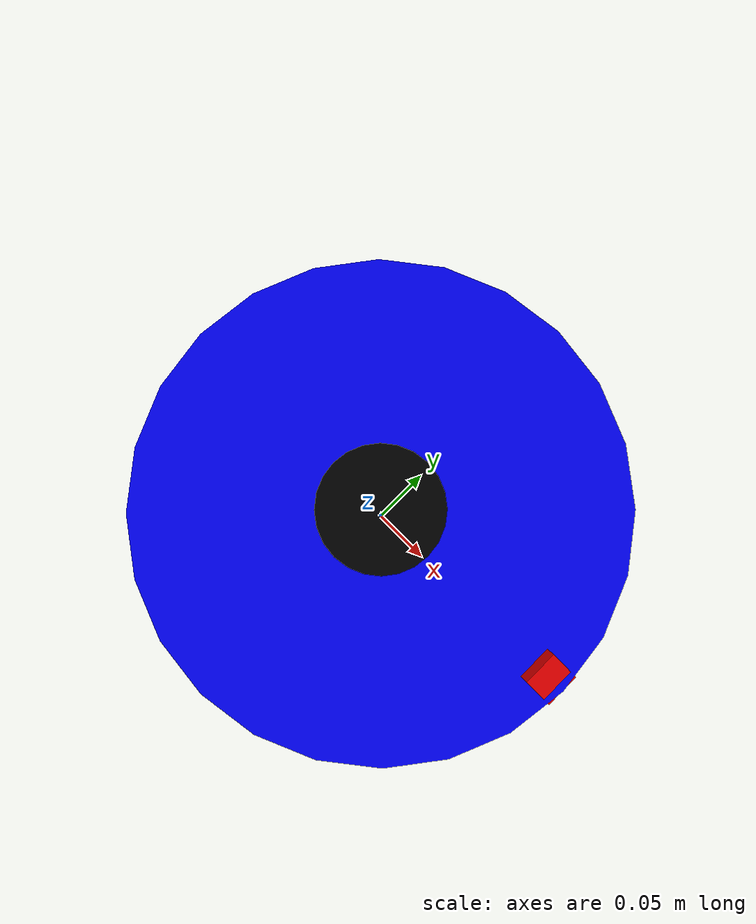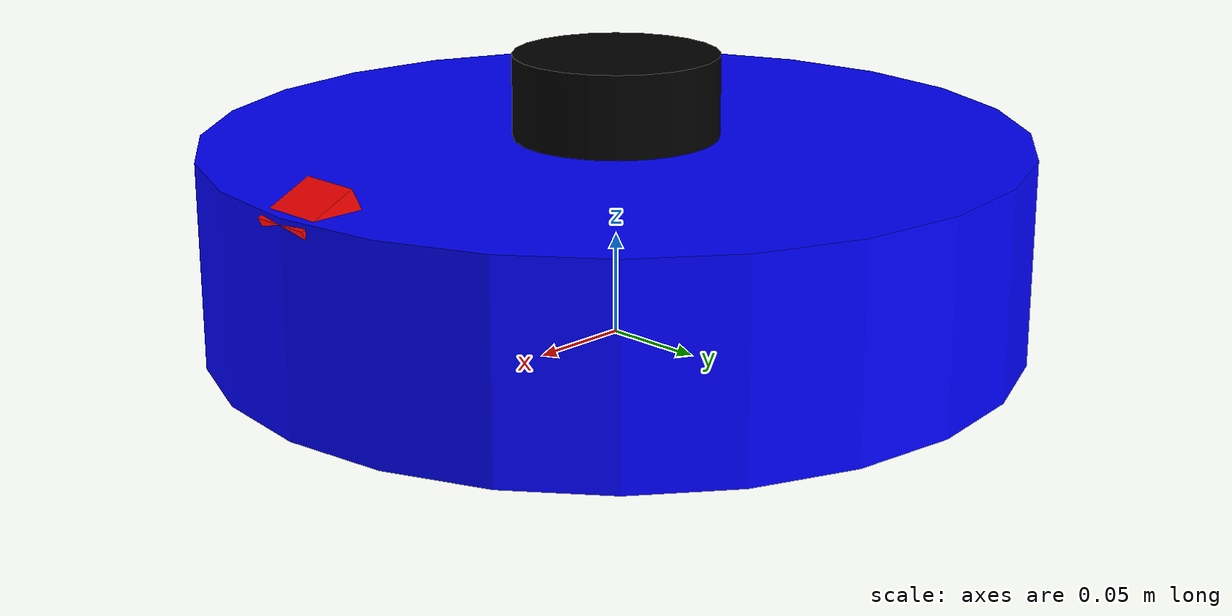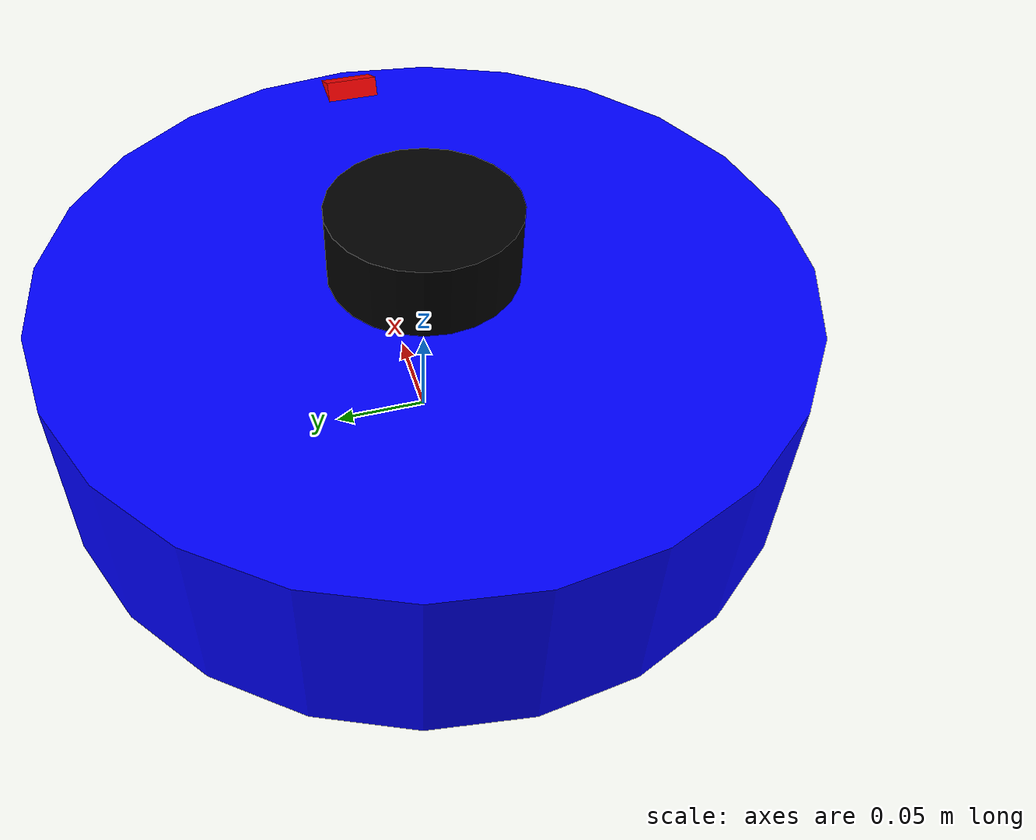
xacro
<?xml version="1.0"?>
<robot xmlns:xacro="http://www.ros.org/wiki/xacro" name="vacuum_bot">

  <!-- BASE FOOTPRINT & BASE LINK -->
  <link name="base_footprint"/>

  <joint name="base_joint" type="fixed">
    <parent link="base_footprint"/>
    <child link="base_link"/>
    <origin xyz="0 0 0.05" rpy="0 0 0"/>
  </joint>

  <link name="base_link">
    <visual>
      <geometry>
        <cylinder radius="0.2" length="0.1"/>
      </geometry>
      <material name="blue">
        <color rgba="0 0 1 1"/>
      </material>
    </visual>
    <collision>
      <geometry>
        <cylinder radius="0.2" length="0.1"/>
      </geometry>
    </collision>
    <inertial>
      <mass value="2.0"/>
      <origin xyz="0 0 0" rpy="0 0 0"/>
      <inertia ixx="0.02" ixy="0" ixz="0" iyy="0.02" iyz="0" izz="0.04"/>
    </inertial>
  </link>

  <!-- LEFT WHEEL -->
  <link name="left_wheel_link">
    <visual>
      <geometry>
        <cylinder radius="0.05" length="0.02"/>
      </geometry>
      <material name="black">
        <color rgba="0 0 0 1"/>
      </material>
    </visual>
    <collision>
      <geometry>
        <cylinder radius="0.05" length="0.02"/>
      </geometry>
    </collision>
    <inertial>
      <mass value="0.2"/>
      <origin xyz="0 0 0" rpy="0 0 0"/>
      <inertia ixx="0.0001" ixy="0" ixz="0" iyy="0.0001" iyz="0" izz="0.0002"/>
    </inertial>
  </link>

  <joint name="left_wheel_joint" type="continuous">
    <parent link="base_link"/>
    <child link="left_wheel_link"/>
    <origin xyz="0 0.15 0" rpy="-1.5708 0 0"/>
    <axis xyz="0 0 1"/>
  </joint>

  <!-- RIGHT WHEEL -->
  <link name="right_wheel_link">
    <visual>
      <geometry>
        <cylinder radius="0.05" length="0.02"/>
      </geometry>
      <material name="black">
        <color rgba="0 0 0 1"/>
      </material>
    </visual>
    <collision>
      <geometry>
        <cylinder radius="0.05" length="0.02"/>
      </geometry>
    </collision>
    <inertial>
      <mass value="0.2"/>
      <origin xyz="0 0 0" rpy="0 0 0"/>
      <inertia ixx="0.0001" ixy="0" ixz="0" iyy="0.0001" iyz="0" izz="0.0002"/>
    </inertial>
  </link>

  <joint name="right_wheel_joint" type="continuous">
    <parent link="base_link"/>
    <child link="right_wheel_link"/>
    <origin xyz="0 -0.15 0" rpy="-1.5708 0 0"/>
    <axis xyz="0 0 1"/>
  </joint>

  <!-- CASTER WHEEL -->
  <link name="caster_wheel_link">
    <visual>
      <geometry>
        <sphere radius="0.025"/>
      </geometry>
      <material name="black">
        <color rgba="0 0 0 1"/>
      </material>
    </visual>
    <collision>
      <geometry>
        <sphere radius="0.025"/>
      </geometry>
    </collision>
    <inertial>
      <mass value="0.1"/>
      <origin xyz="0 0 0" rpy="0 0 0"/>
      <inertia ixx="0.00001" ixy="0" ixz="0" iyy="0.00001" iyz="0" izz="0.00001"/>
    </inertial>
  </link>

  <joint name="caster_wheel_joint" type="fixed">
    <parent link="base_link"/>
    <child link="caster_wheel_link"/>
    <origin xyz="0.15 0 -0.025" rpy="0 0 0"/>
  </joint>

  <!-- LIDAR SENSOR WITH VISUAL RAYS -->
  <link name="lidar_link">
    <visual>
      <geometry>
        <cylinder radius="0.05" length="0.04"/>
      </geometry>
      <material name="black">
        <color rgba="0 0 0 1"/>
      </material>
    </visual>
    <collision>
      <geometry>
        <cylinder radius="0.05" length="0.04"/>
      </geometry>
    </collision>
  </link>

  <joint name="lidar_joint" type="fixed">
    <parent link="base_link"/>
    <child link="lidar_link"/>
    <origin xyz="0 0 0.07" rpy="0 0 0"/>
  </joint>

  <gazebo reference="lidar_link">
    <sensor name="gpu_lidar" type="gpu_lidar">
      <update_rate>10</update_rate>
      <topic>/scan</topic>
      <gz_frame_id>lidar_link</gz_frame_id>
      <always_on>true</always_on>
      <visualize>true</visualize>
      <lidar>
        <scan>
          <horizontal>
            <samples>360</samples>
            <resolution>1</resolution>
            <min_angle>-3.14159</min_angle>
            <max_angle>3.14159</max_angle>
          </horizontal>
        </scan>
        <range>
          <min>0.15</min>
          <max>10.0</max>
        </range>
      </lidar>
    </sensor>
  </gazebo>

  <!-- CAMERA SENSOR -->
  <link name="camera_link">
    <visual>
      <geometry>
        <box size="0.03 0.03 0.03"/>
      </geometry>
      <material name="red">
        <color rgba="1 0 0 1"/>
      </material>
    </visual>
    <collision>
      <geometry>
        <box size="0.03 0.03 0.03"/>
      </geometry>
    </collision>
  </link>

  <joint name="camera_joint" type="fixed">
    <parent link="base_link"/>
    <child link="camera_link"/>
    <origin xyz="0.18 0 0.04" rpy="0 0.45 0"/>
  </joint>

  <gazebo reference="camera_link">
    <sensor name="camera" type="camera">
      <always_on>true</always_on>
      <update_rate>30</update_rate>
      <visualize>true</visualize>
      <topic>/camera/image_raw</topic>
      <gz_frame_id>camera_link</gz_frame_id>
      <camera>
        <horizontal_fov>1.089</horizontal_fov>
        <image>
          <width>640</width>
          <height>480</height>
          <format>R8G8B8</format>
        </image>
        <clip>
          <near>0.05</near>
          <far>8.0</far>
        </clip>
      </camera>
    </sensor>
  </gazebo>

  <!-- DIFFERENTIAL DRIVE PLUGIN -->
  <gazebo>
    <plugin filename="gz-sim-diff-drive-system" name="gz::sim::systems::DiffDrive">
      <left_joint>left_wheel_joint</left_joint>
      <right_joint>right_wheel_joint</right_joint>
      <wheel_separation>0.3</wheel_separation>
      <wheel_radius>0.05</wheel_radius>
      <topic>/cmd_vel</topic>
      <odom_topic>/odom</odom_topic>
      <tf_topic>/tf</tf_topic>
      <frame_id>odom</frame_id>
      <child_frame_id>base_footprint</child_frame_id>
    </plugin>
  </gazebo>

</robot>
